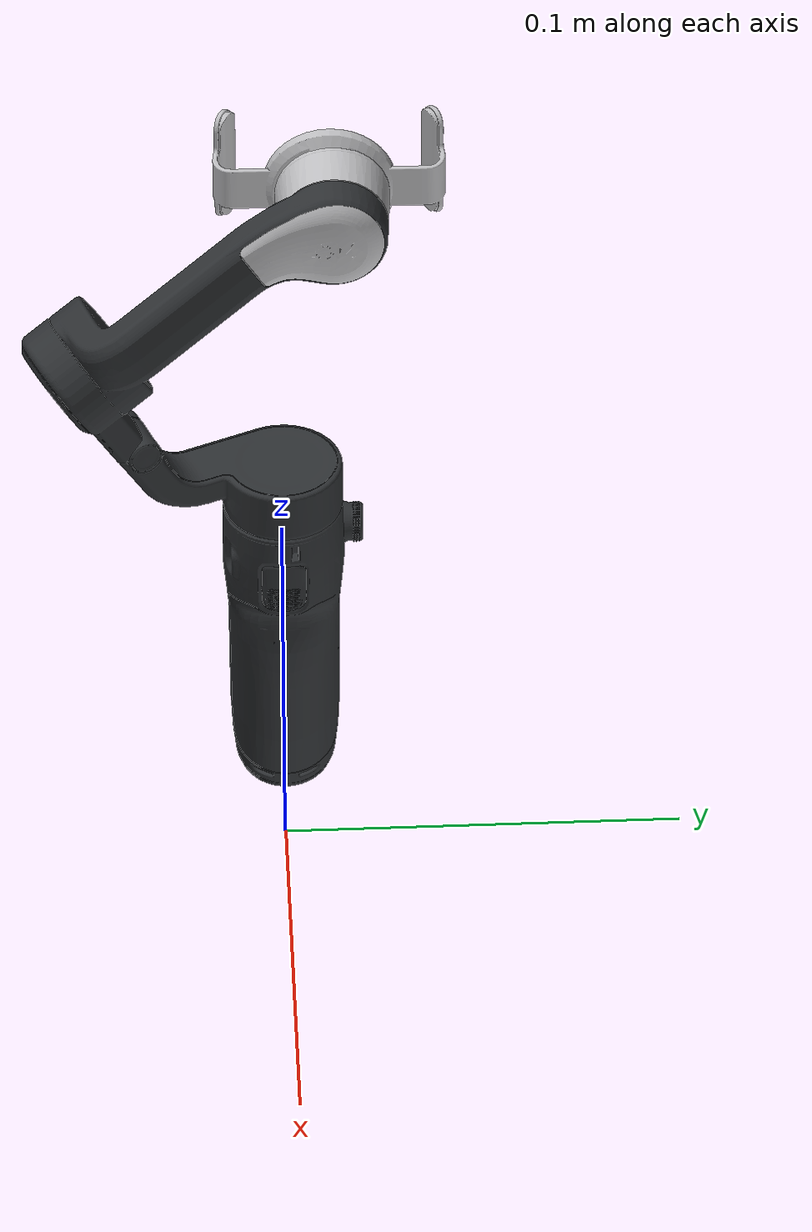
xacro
<?xml version="1.0" encoding="utf-8"?>
<robot name="dji_osmo_mobile_6" xmlns:xacro="http://www.ros.org/wiki/xacro">

  <!-- Arguments -->
  <xacro:arg name="use_collada" default="false"/>
  <xacro:arg name="fix_base" default="true"/>
  <xacro:arg name="phone_mass" default="0.180"/>

  <!-- Choose mesh format -->
  <xacro:property name="mesh_ext" value="stl"/>
  <xacro:if value="$(arg use_collada)">
    <xacro:property name="mesh_ext" value="dae"/>
  </xacro:if>

  <material name="dji_dark_grey">
    <color rgba="0.18 0.19 0.20 1.0"/>
  </material>
  <material name="dji_silver">
    <color rgba="0.75 0.75 0.76 1.0"/>
  </material>

  <!-- Optional World Link to fix the gimbal in space -->
  <xacro:if value="$(arg fix_base)">
    <link name="world"/>
    <joint name="world_to_base" type="fixed">
      <parent link="world"/>
      <child link="base_link"/>
      <origin xyz="0 0 0" rpy="0 0 0"/>
    </joint>
  </xacro:if>

  <!-- ======================== BASE LINK ======================== -->
  <link name="base_link">
    <inertial>
      <origin xyz="-0.0138 0.0004 0.0617" rpy="0 0 0"/>
      <mass value="0.180"/>
      <inertia ixx="1.939541e-04" ixy="0" ixz="0"
               iyy="2.201141e-04" iyz="0"
               izz="6.312664e-05"/>
    </inertial>
    <visual>
      <origin xyz="0 0 0" rpy="0 0 0"/>
      <geometry>
        <mesh filename="package://dji_osmo_mobile_6/meshes/${mesh_ext}/base_link.${mesh_ext}"/>
      </geometry>
      <material name="dji_dark_grey"/>
    </visual>
    <collision>
      <origin xyz="-0.0138 0.0004 0.0617" rpy="0 0 0"/>
      <geometry>
        <cylinder radius="0.0273" length="0.1082"/>
      </geometry>
    </collision>
  </link>

  <!-- ======================== YAW (PAN) JOINT & LINK ======================== -->
  <joint name="yaw_joint" type="revolute">
    <parent link="base_link"/>
    <child link="yaw_link"/>
    <origin xyz="0.0000 0.0000 0.1070" rpy="0 0 0"/>
    <axis xyz="0 0 1"/>
    <limit lower="-2.80" upper="2.80" effort="1.2" velocity="6.28"/>
    <dynamics damping="0.01" friction="0.005"/>
  </joint>

  <link name="yaw_link">
    <inertial>
      <origin xyz="0.0025 -0.0163 0.0150" rpy="0 0 0"/>
      <mass value="0.055"/>
      <inertia ixx="2.014623e-05" ixy="0" ixz="0"
               iyy="9.048004e-06" iyz="0"
               izz="1.957288e-05"/>
    </inertial>
    <visual>
      <origin xyz="0 0 0" rpy="0 0 0"/>
      <geometry>
        <mesh filename="package://dji_osmo_mobile_6/meshes/${mesh_ext}/yaw_link.${mesh_ext}"/>
      </geometry>
      <material name="dji_dark_grey"/>
    </visual>
    <collision>
      <origin xyz="0.0025 -0.0163 0.0150" rpy="0 0 0"/>
      <geometry>
        <box size="0.0304 0.0578 0.0324"/>
      </geometry>
    </collision>
  </link>

  <!-- ======================== ROLL JOINT & LINK ======================== -->
  <joint name="roll_joint" type="revolute">
    <parent link="yaw_link"/>
    <child link="roll_link"/>
    <origin xyz="0.0072 -0.0357 0.0277" rpy="0 0 0"/>
    <axis xyz="0.9205 0.3908 0"/>
    <limit lower="-1.60" upper="1.60" effort="1.2" velocity="6.28"/>
    <dynamics damping="0.01" friction="0.005"/>
  </joint>

  <link name="roll_link">
    <inertial>
      <origin xyz="0.0130 0.0030 0.0407" rpy="0 0 0"/>
      <mass value="0.065"/>
      <inertia ixx="8.008248e-05" ixy="0" ixz="0"
               iyy="4.648445e-05" iyz="0"
               izz="4.917453e-05"/>
    </inertial>
    <visual>
      <origin xyz="0 0 0" rpy="0 0 0"/>
      <geometry>
        <mesh filename="package://dji_osmo_mobile_6/meshes/${mesh_ext}/roll_link.${mesh_ext}"/>
      </geometry>
      <material name="dji_dark_grey"/>
    </visual>
    <collision>
      <origin xyz="0.0130 0.0030 0.0407" rpy="0 0 0"/>
      <geometry>
        <box size="0.0379 0.0874 0.0845"/>
      </geometry>
    </collision>
  </link>

  <!-- ======================== PITCH (TILT) JOINT & LINK ======================== -->
  <joint name="pitch_joint" type="revolute">
    <parent link="roll_link"/>
    <child link="pitch_link"/>
    <origin xyz="0.0017 0.0543 0.0591" rpy="0 0 0"/>
    <axis xyz="0 1 0"/>
    <limit lower="-1.80" upper="1.80" effort="1.2" velocity="6.28"/>
    <dynamics damping="0.01" friction="0.005"/>
  </joint>

  <link name="pitch_link">
    <inertial>
      <origin xyz="-0.0090 -0.0063 0.0105" rpy="0 0 0"/>
      <mass value="${0.040 + $(arg phone_mass)}"/>
      <inertia ixx="7.438187e-05" ixy="0" ixz="0"
               iyy="5.099382e-05" iyz="0"
               izz="8.860921e-05"/>
    </inertial>
    <visual>
      <origin xyz="0 0 0" rpy="0 0 0"/>
      <geometry>
        <mesh filename="package://dji_osmo_mobile_6/meshes/${mesh_ext}/pitch_link.${mesh_ext}"/>
      </geometry>
      <material name="dji_silver"/>
    </visual>
    <collision>
      <origin xyz="-0.0090 -0.0063 0.0105" rpy="0 0 0"/>
      <geometry>
        <box size="0.0422 0.0553 0.0317"/>
      </geometry>
    </collision>
  </link>

  <!-- ======================== IMU SENSOR FRAME ======================== -->
  <joint name="imu_joint" type="fixed">
    <parent link="pitch_link"/>
    <child link="imu_link"/>
    <origin xyz="-0.0090 -0.0063 0.0105" rpy="0 0 0"/>
  </joint>

  <link name="imu_link">
    <inertial>
      <origin xyz="0 0 0" rpy="0 0 0"/>
      <mass value="0.001"/>
      <inertia ixx="1e-7" ixy="0" ixz="0" iyy="1e-7" iyz="0" izz="1e-7"/>
    </inertial>
  </link>

  <!-- ======================== GAZEBO CONFIGURATION ======================== -->
  <gazebo reference="imu_link">
    <sensor name="gimbal_imu" type="imu">
      <always_on>true</always_on>
      <update_rate>200.0</update_rate>
      <visualize>true</visualize>
      <topic>/gimbal/imu/data</topic>
      <imu>
        <angular_velocity>
          <x><noise type="gaussian"><mean>0.0</mean><stddev>0.0002</stddev></noise></x>
          <y><noise type="gaussian"><mean>0.0</mean><stddev>0.0002</stddev></noise></y>
          <z><noise type="gaussian"><mean>0.0</mean><stddev>0.0002</stddev></noise></z>
        </angular_velocity>
        <linear_acceleration>
          <x><noise type="gaussian"><mean>0.0</mean><stddev>0.0015</stddev></noise></x>
          <y><noise type="gaussian"><mean>0.0</mean><stddev>0.0015</stddev></noise></y>
          <z><noise type="gaussian"><mean>0.0</mean><stddev>0.0015</stddev></noise></z>
        </linear_acceleration>
      </imu>
      <plugin name="imu_plugin" filename="libgazebo_ros_imu_sensor.so">
        <ros>
          <namespace>/gimbal</namespace>
          <remapping>~/out:=imu/data</remapping>
        </ros>
        <initial_orientation_as_reference>false</initial_orientation_as_reference>
      </plugin>
    </sensor>
  </gazebo>

  <gazebo reference="base_link"><material>Gazebo/DarkGrey</material><mu1>0.8</mu1><mu2>0.8</mu2></gazebo>
  <gazebo reference="yaw_link"><material>Gazebo/DarkGrey</material></gazebo>
  <gazebo reference="roll_link"><material>Gazebo/DarkGrey</material></gazebo>
  <gazebo reference="pitch_link"><material>Gazebo/Grey</material></gazebo>

</robot>
